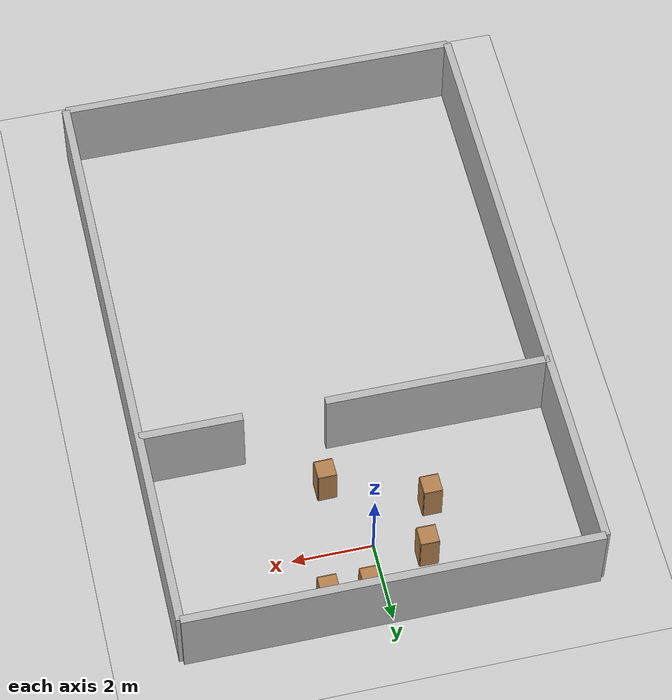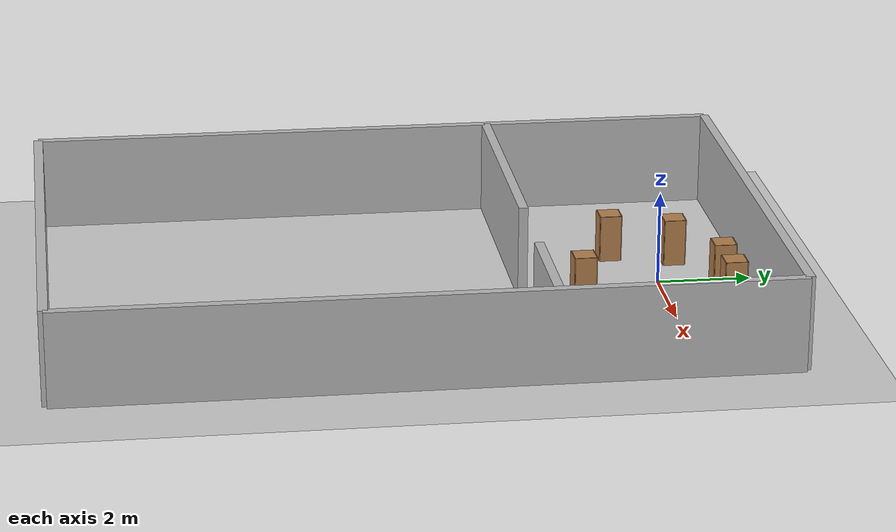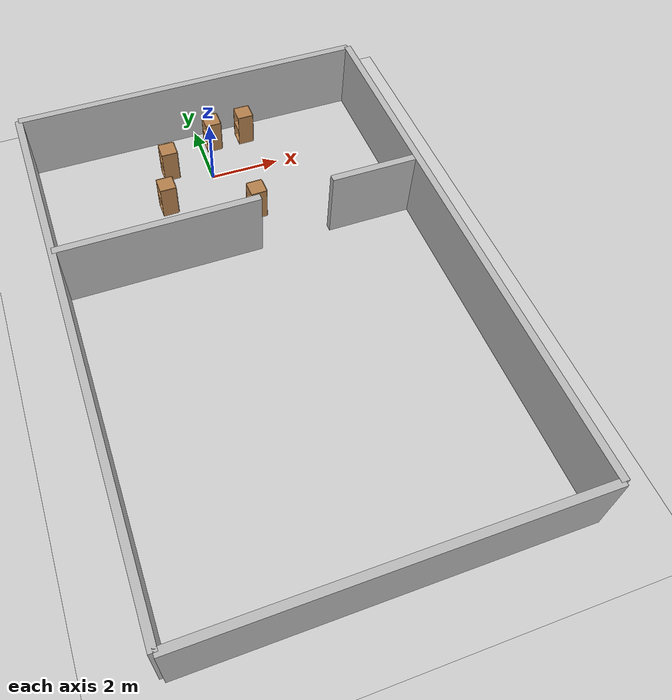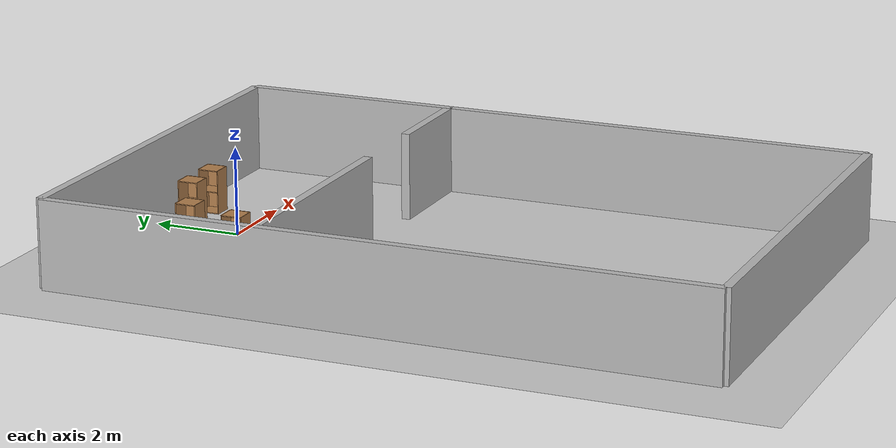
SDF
<sdf version="1.6">
 <world name="default">
  <physics name="default_physics" default="0" type="ode">
   <ode>
    <solver>
     <type>quick</type>
     <iters>20</iters>
     <sor>1</sor>
     <use_dynamic_moi_rescaling>0</use_dynamic_moi_rescaling>
    </solver>
    <constraints>
     <cfm>0</cfm>
     <erp>0.2</erp>
     <contact_max_correcting_vel>100</contact_max_correcting_vel>
     <contact_surface_layer>0</contact_surface_layer>
    </constraints>
   </ode>
   <real_time_update_rate>0</real_time_update_rate>
   <max_step_size>0.001</max_step_size>
   <real_time_factor>100</real_time_factor>
   <max_contacts>20</max_contacts>
  </physics>
  <light name="sun" type="directional">
   <pose>0 0 10 0 -0 0</pose>
   <diffuse>0.8 0.8 0.8 1</diffuse>
   <specular>0.2 0.2 0.2 1</specular>
   <attenuation>
    <range>1000</range>
    <constant>0.9</constant>
    <linear>0.01</linear>
    <quadratic>0.001</quadratic>
   </attenuation>
   <direction>0.5 0.1 -0.9</direction>
  </light>
  <model name="ground_plane">
   <static>1</static>
   <link name="link">
    <collision name="collision">
     <geometry><plane><normal>0 0 1</normal><size>100 100</size></plane></geometry>
     <surface><friction><ode><mu>100</mu><mu2>50</mu2></ode></friction></surface>
    </collision>
    <visual name="visual">
     <cast_shadows>0</cast_shadows>
     <geometry><plane><normal>0 0 1</normal><size>100 100</size></plane></geometry>
     <material>
      <script><uri>file://media/materials/scripts/gazebo.material</uri><name>Gazebo/Grey</name></script>
     </material>
    </visual>
    <velocity_decay><linear>0</linear><angular>0</angular></velocity_decay>
   </link>
  </model>
  <model name="wall_1_model">
   <pose>0 -13 1 0 -0 0</pose>
   <static>1</static>
   <link name="wall_1_body">
    <inertial>
     <mass>1</mass>
     <inertia><ixx>1</ixx><ixy>0</ixy><ixz>0</ixz><iyy>1</iyy><iyz>0</iyz><izz>1</izz></inertia>
    </inertial>
    <collision name="collision"><geometry><box><size>10 0.2 2</size></box></geometry></collision>
    <visual name="visual"><geometry><box><size>10 0.2 2</size></box></geometry></visual>
    <velocity_decay><linear>0</linear><angular>0</angular></velocity_decay>
   </link>
  </model>
  <model name="wall_2_model">
   <pose>0 2 1 0 -0 0</pose>
   <static>1</static>
   <link name="wall_2_body">
    <inertial>
     <mass>1</mass>
     <inertia><ixx>1</ixx><ixy>0</ixy><ixz>0</ixz><iyy>1</iyy><iyz>0</iyz><izz>1</izz></inertia>
    </inertial>
    <collision name="collision"><geometry><box><size>10 0.2 2</size></box></geometry></collision>
    <visual name="visual"><geometry><box><size>10 0.2 2</size></box></geometry></visual>
    <velocity_decay><linear>0</linear><angular>0</angular></velocity_decay>
   </link>
  </model>
  <model name="wall_3_model">
   <pose>-5 -5.5 1 0 -0 0</pose>
   <static>1</static>
   <link name="wall_3_body">
    <inertial>
     <mass>1</mass>
     <inertia><ixx>1</ixx><ixy>0</ixy><ixz>0</ixz><iyy>1</iyy><iyz>0</iyz><izz>1</izz></inertia>
    </inertial>
    <collision name="collision"><geometry><box><size>0.2 15 2</size></box></geometry></collision>
    <visual name="visual"><geometry><box><size>0.2 15 2</size></box></geometry></visual>
    <velocity_decay><linear>0</linear><angular>0</angular></velocity_decay>
   </link>
  </model>
  <model name="wall_4_model">
   <pose>5 -5.5 1 0 -0 0</pose>
   <static>1</static>
   <link name="wall_4_body">
    <inertial>
     <mass>1</mass>
     <inertia><ixx>1</ixx><ixy>0</ixy><ixz>0</ixz><iyy>1</iyy><iyz>0</iyz><izz>1</izz></inertia>
    </inertial>
    <collision name="collision"><geometry><box><size>0.2 15 2</size></box></geometry></collision>
    <visual name="visual"><geometry><box><size>0.2 15 2</size></box></geometry></visual>
    <velocity_decay><linear>0</linear><angular>0</angular></velocity_decay>
   </link>
  </model>
  <model name="wall_5_model">
   <pose>-2.25 -3 1 0 -0 0</pose>
   <static>1</static>
   <link name="wall_5_body">
    <inertial>
     <mass>1</mass>
     <inertia><ixx>1</ixx><ixy>0</ixy><ixz>0</ixz><iyy>1</iyy><iyz>0</iyz><izz>1</izz></inertia>
    </inertial>
    <collision name="collision"><geometry><box><size>5.5 0.2 2</size></box></geometry></collision>
    <visual name="visual"><geometry><box><size>5.5 0.2 2</size></box></geometry></visual>
    <velocity_decay><linear>0</linear><angular>0</angular></velocity_decay>
   </link>
  </model>
  <model name="wall_6_model">
   <pose>3.75 -3 1 0 -0 0</pose>
   <static>1</static>
   <link name="wall_6_body">
    <inertial>
     <mass>1</mass>
     <inertia><ixx>1</ixx><ixy>0</ixy><ixz>0</ixz><iyy>1</iyy><iyz>0</iyz><izz>1</izz></inertia>
    </inertial>
    <collision name="collision"><geometry><box><size>2.5 0.2 2</size></box></geometry></collision>
    <visual name="visual"><geometry><box><size>2.5 0.2 2</size></box></geometry></visual>
    <velocity_decay><linear>0</linear><angular>0</angular></velocity_decay>
   </link>
  </model>
  <scene><ambient>0.2 0.2 0.2 1</ambient><background>0.7 0.7 0.7 1</background><shadows>1</shadows></scene>
  <model name="cabinet_1">
   <static>0</static>
   <link name="cabinet_bottom_plate">
    <inertial>
     <pose>0 0 -1 0 -0 0</pose>
     <inertia><ixx>2.05</ixx><ixy>0</ixy><ixz>0</ixz><iyy>2.05</iyy><iyz>0</iyz><izz>2.05</izz></inertia>
     <mass>25</mass>
    </inertial>
    <collision name="cabinet_bottom_plate_geom">
     <pose>0 0 0.01 0 -0 0</pose>
     <geometry><box><size>0.45 0.45 0.02</size></box></geometry>
    </collision>
    <visual name="cabinet_bottom_plate_geom_visual">
     <pose>0 0 0.01 0 -0 0</pose>
     <geometry><box><size>0.45 0.45 0.02</size></box></geometry>
     <material>
      <script><uri>file://media/materials/scripts/gazebo.material</uri><name>Gazebo/Wood</name></script>
     </material>
    </visual>
    <collision name="cabinet_bottom_plate_geom_cabinet_back_plate">
     <pose>0.235 0 0.51 0 -0 0</pose>
     <geometry><box><size>0.02 0.45 1.02</size></box></geometry>
    </collision>
    <visual name="cabinet_bottom_plate_geom_cabinet_back_plate_visual">
     <pose>0.235 0 0.51 0 -0 0</pose>
     <geometry><box><size>0.02 0.45 1.02</size></box></geometry>
     <material>
      <script><uri>file://media/materials/scripts/gazebo.material</uri><name>Gazebo/Wood</name></script>
     </material>
    </visual>
    <collision name="cabinet_bottom_plate_geom_cabinet_left_plate">
     <pose>0 0.235 0.51 0 -0 0</pose>
     <geometry><box><size>0.45 0.02 1.02</size></box></geometry>
    </collision>
    <visual name="cabinet_bottom_plate_geom_cabinet_left_plate_visual">
     <pose>0 0.235 0.51 0 -0 0</pose>
     <geometry><box><size>0.45 0.02 1.02</size></box></geometry>
     <material>
      <script><uri>file://media/materials/scripts/gazebo.material</uri><name>Gazebo/Wood</name></script>
     </material>
    </visual>
    <collision name="cabinet_bottom_plate_geom_cabinet_middle_plate">
     <pose>0 0 0.51 0 -0 0</pose>
     <geometry><box><size>0.45 0.45 0.02</size></box></geometry>
    </collision>
    <visual name="cabinet_bottom_plate_geom_cabinet_middle_plate_visual">
     <pose>0 0 0.51 0 -0 0</pose>
     <geometry><box><size>0.45 0.45 0.02</size></box></geometry>
     <material>
      <script><uri>file://media/materials/scripts/gazebo.material</uri><name>Gazebo/Wood</name></script>
     </material>
    </visual>
    <collision name="cabinet_bottom_plate_geom_cabinet_right_plate">
     <pose>0 -0.235 0.51 0 -0 0</pose>
     <geometry><box><size>0.45 0.02 1.02</size></box></geometry>
    </collision>
    <visual name="cabinet_bottom_plate_geom_cabinet_right_plate_visual">
     <pose>0 -0.235 0.51 0 -0 0</pose>
     <geometry><box><size>0.45 0.02 1.02</size></box></geometry>
     <material>
      <script><uri>file://media/materials/scripts/gazebo.material</uri><name>Gazebo/Wood</name></script>
     </material>
    </visual>
    <collision name="cabinet_bottom_plate_geom_cabinet_top_plate">
     <pose>0 0 1.01 0 -0 0</pose>
     <geometry><box><size>0.45 0.45 0.02</size></box></geometry>
    </collision>
    <visual name="cabinet_bottom_plate_geom_cabinet_top_plate_visual">
     <pose>0 0 1.01 0 -0 0</pose>
     <geometry><box><size>0.45 0.45 0.02</size></box></geometry>
     <material>
      <script><uri>file://media/materials/scripts/gazebo.material</uri><name>Gazebo/Wood</name></script>
     </material>
    </visual>
    <velocity_decay><linear>0</linear><angular>0</angular></velocity_decay>
   </link>
   <pose>-1.57216 -0.784625 -0 0 -1e-06 0.005323</pose>
  </model>
  <model name="cabinet_2">
   <static>0</static>
   <link name="cabinet_bottom_plate">
    <inertial>
     <pose>0 0 -1 0 -0 0</pose>
     <inertia><ixx>2.05</ixx><ixy>0</ixy><ixz>0</ixz><iyy>2.05</iyy><iyz>0</iyz><izz>2.05</izz></inertia>
     <mass>25</mass>
    </inertial>
    <collision name="cabinet_bottom_plate_geom">
     <pose>0 0 0.01 0 -0 0</pose>
     <geometry><box><size>0.45 0.45 0.02</size></box></geometry>
    </collision>
    <visual name="cabinet_bottom_plate_geom_visual">
     <pose>0 0 0.01 0 -0 0</pose>
     <geometry><box><size>0.45 0.45 0.02</size></box></geometry>
     <material>
      <script><uri>file://media/materials/scripts/gazebo.material</uri><name>Gazebo/Wood</name></script>
     </material>
    </visual>
    <collision name="cabinet_bottom_plate_geom_cabinet_back_plate">
     <pose>0.235 0 0.51 0 -0 0</pose>
     <geometry><box><size>0.02 0.45 1.02</size></box></geometry>
    </collision>
    <visual name="cabinet_bottom_plate_geom_cabinet_back_plate_visual">
     <pose>0.235 0 0.51 0 -0 0</pose>
     <geometry><box><size>0.02 0.45 1.02</size></box></geometry>
     <material>
      <script><uri>file://media/materials/scripts/gazebo.material</uri><name>Gazebo/Wood</name></script>
     </material>
    </visual>
    <collision name="cabinet_bottom_plate_geom_cabinet_left_plate">
     <pose>0 0.235 0.51 0 -0 0</pose>
     <geometry><box><size>0.45 0.02 1.02</size></box></geometry>
    </collision>
    <visual name="cabinet_bottom_plate_geom_cabinet_left_plate_visual">
     <pose>0 0.235 0.51 0 -0 0</pose>
     <geometry><box><size>0.45 0.02 1.02</size></box></geometry>
     <material>
      <script><uri>file://media/materials/scripts/gazebo.material</uri><name>Gazebo/Wood</name></script>
     </material>
    </visual>
    <collision name="cabinet_bottom_plate_geom_cabinet_middle_plate">
     <pose>0 0 0.51 0 -0 0</pose>
     <geometry><box><size>0.45 0.45 0.02</size></box></geometry>
    </collision>
    <visual name="cabinet_bottom_plate_geom_cabinet_middle_plate_visual">
     <pose>0 0 0.51 0 -0 0</pose>
     <geometry><box><size>0.45 0.45 0.02</size></box></geometry>
     <material>
      <script><uri>file://media/materials/scripts/gazebo.material</uri><name>Gazebo/Wood</name></script>
     </material>
    </visual>
    <collision name="cabinet_bottom_plate_geom_cabinet_right_plate">
     <pose>0 -0.235 0.51 0 -0 0</pose>
     <geometry><box><size>0.45 0.02 1.02</size></box></geometry>
    </collision>
    <visual name="cabinet_bottom_plate_geom_cabinet_right_plate_visual">
     <pose>0 -0.235 0.51 0 -0 0</pose>
     <geometry><box><size>0.45 0.02 1.02</size></box></geometry>
     <material>
      <script><uri>file://media/materials/scripts/gazebo.material</uri><name>Gazebo/Wood</name></script>
     </material>
    </visual>
    <collision name="cabinet_bottom_plate_geom_cabinet_top_plate">
     <pose>0 0 1.01 0 -0 0</pose>
     <geometry><box><size>0.45 0.45 0.02</size></box></geometry>
    </collision>
    <visual name="cabinet_bottom_plate_geom_cabinet_top_plate_visual">
     <pose>0 0 1.01 0 -0 0</pose>
     <geometry><box><size>0.45 0.45 0.02</size></box></geometry>
     <material>
      <script><uri>file://media/materials/scripts/gazebo.material</uri><name>Gazebo/Wood</name></script>
     </material>
    </visual>
    <velocity_decay><linear>0</linear><angular>0</angular></velocity_decay>
   </link>
   <pose>1.39514 1.32269 -0 0 -1e-06 -6.3e-05</pose>
  </model>
  <model name="cabinet_3">
   <static>0</static>
   <link name="cabinet_bottom_plate">
    <inertial>
     <pose>0 0 -1 0 -0 0</pose>
     <inertia><ixx>2.05</ixx><ixy>0</ixy><ixz>0</ixz><iyy>2.05</iyy><iyz>0</iyz><izz>2.05</izz></inertia>
     <mass>25</mass>
    </inertial>
    <collision name="cabinet_bottom_plate_geom">
     <pose>0 0 0.01 0 -0 0</pose>
     <geometry><box><size>0.45 0.45 0.02</size></box></geometry>
    </collision>
    <visual name="cabinet_bottom_plate_geom_visual">
     <pose>0 0 0.01 0 -0 0</pose>
     <geometry><box><size>0.45 0.45 0.02</size></box></geometry>
     <material>
      <script><uri>file://media/materials/scripts/gazebo.material</uri><name>Gazebo/Wood</name></script>
     </material>
    </visual>
    <collision name="cabinet_bottom_plate_geom_cabinet_back_plate">
     <pose>0.235 0 0.51 0 -0 0</pose>
     <geometry><box><size>0.02 0.45 1.02</size></box></geometry>
    </collision>
    <visual name="cabinet_bottom_plate_geom_cabinet_back_plate_visual">
     <pose>0.235 0 0.51 0 -0 0</pose>
     <geometry><box><size>0.02 0.45 1.02</size></box></geometry>
     <material>
      <script><uri>file://media/materials/scripts/gazebo.material</uri><name>Gazebo/Wood</name></script>
     </material>
    </visual>
    <collision name="cabinet_bottom_plate_geom_cabinet_left_plate">
     <pose>0 0.235 0.51 0 -0 0</pose>
     <geometry><box><size>0.45 0.02 1.02</size></box></geometry>
    </collision>
    <visual name="cabinet_bottom_plate_geom_cabinet_left_plate_visual">
     <pose>0 0.235 0.51 0 -0 0</pose>
     <geometry><box><size>0.45 0.02 1.02</size></box></geometry>
     <material>
      <script><uri>file://media/materials/scripts/gazebo.material</uri><name>Gazebo/Wood</name></script>
     </material>
    </visual>
    <collision name="cabinet_bottom_plate_geom_cabinet_middle_plate">
     <pose>0 0 0.51 0 -0 0</pose>
     <geometry><box><size>0.45 0.45 0.02</size></box></geometry>
    </collision>
    <visual name="cabinet_bottom_plate_geom_cabinet_middle_plate_visual">
     <pose>0 0 0.51 0 -0 0</pose>
     <geometry><box><size>0.45 0.45 0.02</size></box></geometry>
     <material>
      <script><uri>file://media/materials/scripts/gazebo.material</uri><name>Gazebo/Wood</name></script>
     </material>
    </visual>
    <collision name="cabinet_bottom_plate_geom_cabinet_right_plate">
     <pose>0 -0.235 0.51 0 -0 0</pose>
     <geometry><box><size>0.45 0.02 1.02</size></box></geometry>
    </collision>
    <visual name="cabinet_bottom_plate_geom_cabinet_right_plate_visual">
     <pose>0 -0.235 0.51 0 -0 0</pose>
     <geometry><box><size>0.45 0.02 1.02</size></box></geometry>
     <material>
      <script><uri>file://media/materials/scripts/gazebo.material</uri><name>Gazebo/Wood</name></script>
     </material>
    </visual>
    <collision name="cabinet_bottom_plate_geom_cabinet_top_plate">
     <pose>0 0 1.01 0 -0 0</pose>
     <geometry><box><size>0.45 0.45 0.02</size></box></geometry>
    </collision>
    <visual name="cabinet_bottom_plate_geom_cabinet_top_plate_visual">
     <pose>0 0 1.01 0 -0 0</pose>
     <geometry><box><size>0.45 0.45 0.02</size></box></geometry>
     <material>
      <script><uri>file://media/materials/scripts/gazebo.material</uri><name>Gazebo/Wood</name></script>
     </material>
    </visual>
    <velocity_decay><linear>0</linear><angular>0</angular></velocity_decay>
   </link>
   <pose>-1.16634 0.545991 -0 0 -1e-06 -0.007937</pose>
  </model>
  <model name="cabinet_4">
   <static>0</static>
   <link name="cabinet_bottom_plate">
    <inertial>
     <pose>0 0 -1 0 -0 0</pose>
     <inertia><ixx>2.05</ixx><ixy>0</ixy><ixz>0</ixz><iyy>2.05</iyy><iyz>0</iyz><izz>2.05</izz></inertia>
     <mass>25</mass>
    </inertial>
    <collision name="cabinet_bottom_plate_geom">
     <pose>0 0 0.01 0 -0 0</pose>
     <geometry><box><size>0.45 0.45 0.02</size></box></geometry>
    </collision>
    <visual name="cabinet_bottom_plate_geom_visual">
     <pose>0 0 0.01 0 -0 0</pose>
     <geometry><box><size>0.45 0.45 0.02</size></box></geometry>
     <material>
      <script><uri>file://media/materials/scripts/gazebo.material</uri><name>Gazebo/Wood</name></script>
     </material>
    </visual>
    <collision name="cabinet_bottom_plate_geom_cabinet_back_plate">
     <pose>0.235 0 0.51 0 -0 0</pose>
     <geometry><box><size>0.02 0.45 1.02</size></box></geometry>
    </collision>
    <visual name="cabinet_bottom_plate_geom_cabinet_back_plate_visual">
     <pose>0.235 0 0.51 0 -0 0</pose>
     <geometry><box><size>0.02 0.45 1.02</size></box></geometry>
     <material>
      <script><uri>file://media/materials/scripts/gazebo.material</uri><name>Gazebo/Wood</name></script>
     </material>
    </visual>
    <collision name="cabinet_bottom_plate_geom_cabinet_left_plate">
     <pose>0 0.235 0.51 0 -0 0</pose>
     <geometry><box><size>0.45 0.02 1.02</size></box></geometry>
    </collision>
    <visual name="cabinet_bottom_plate_geom_cabinet_left_plate_visual">
     <pose>0 0.235 0.51 0 -0 0</pose>
     <geometry><box><size>0.45 0.02 1.02</size></box></geometry>
     <material>
      <script><uri>file://media/materials/scripts/gazebo.material</uri><name>Gazebo/Wood</name></script>
     </material>
    </visual>
    <collision name="cabinet_bottom_plate_geom_cabinet_middle_plate">
     <pose>0 0 0.51 0 -0 0</pose>
     <geometry><box><size>0.45 0.45 0.02</size></box></geometry>
    </collision>
    <visual name="cabinet_bottom_plate_geom_cabinet_middle_plate_visual">
     <pose>0 0 0.51 0 -0 0</pose>
     <geometry><box><size>0.45 0.45 0.02</size></box></geometry>
     <material>
      <script><uri>file://media/materials/scripts/gazebo.material</uri><name>Gazebo/Wood</name></script>
     </material>
    </visual>
    <collision name="cabinet_bottom_plate_geom_cabinet_right_plate">
     <pose>0 -0.235 0.51 0 -0 0</pose>
     <geometry><box><size>0.45 0.02 1.02</size></box></geometry>
    </collision>
    <visual name="cabinet_bottom_plate_geom_cabinet_right_plate_visual">
     <pose>0 -0.235 0.51 0 -0 0</pose>
     <geometry><box><size>0.45 0.02 1.02</size></box></geometry>
     <material>
      <script><uri>file://media/materials/scripts/gazebo.material</uri><name>Gazebo/Wood</name></script>
     </material>
    </visual>
    <collision name="cabinet_bottom_plate_geom_cabinet_top_plate">
     <pose>0 0 1.01 0 -0 0</pose>
     <geometry><box><size>0.45 0.45 0.02</size></box></geometry>
    </collision>
    <visual name="cabinet_bottom_plate_geom_cabinet_top_plate_visual">
     <pose>0 0 1.01 0 -0 0</pose>
     <geometry><box><size>0.45 0.45 0.02</size></box></geometry>
     <material>
      <script><uri>file://media/materials/scripts/gazebo.material</uri><name>Gazebo/Wood</name></script>
     </material>
    </visual>
    <velocity_decay><linear>0</linear><angular>0</angular></velocity_decay>
   </link>
   <pose>0.386737 1.31097 -0 1e-06 -0 -0.001878</pose>
  </model>
  <gravity>0 0 -9.81</gravity>
  <magnetic_field>6e-06 2.3e-05 -4.2e-05</magnetic_field>
  <atmosphere type="adiabatic"/>
  <audio><device>default</device></audio>
  <spherical_coordinates>
   <surface_model>EARTH_WGS84</surface_model>
   <latitude_deg>0</latitude_deg>
   <longitude_deg>0</longitude_deg>
   <elevation>0</elevation>
   <heading_deg>0</heading_deg>
  </spherical_coordinates>
  <model name="cabinet_3_clone">
   <static>0</static>
   <link name="cabinet_bottom_plate">
    <inertial>
     <pose>0 0 -1 0 -0 0</pose>
     <inertia><ixx>2.05</ixx><ixy>0</ixy><ixz>0</ixz><iyy>2.05</iyy><iyz>0</iyz><izz>2.05</izz></inertia>
     <mass>25</mass>
    </inertial>
    <collision name="cabinet_bottom_plate_geom">
     <pose>0 0 0.01 0 -0 0</pose>
     <geometry><box><size>0.45 0.45 0.02</size></box></geometry>
    </collision>
    <visual name="cabinet_bottom_plate_geom_visual">
     <pose>0 0 0.01 0 -0 0</pose>
     <geometry><box><size>0.45 0.45 0.02</size></box></geometry>
     <material>
      <script><uri>file://media/materials/scripts/gazebo.material</uri><name>Gazebo/Wood</name></script>
     </material>
    </visual>
    <collision name="cabinet_bottom_plate_geom_cabinet_back_plate">
     <pose>0.235 0 0.51 0 -0 0</pose>
     <geometry><box><size>0.02 0.45 1.02</size></box></geometry>
    </collision>
    <visual name="cabinet_bottom_plate_geom_cabinet_back_plate_visual">
     <pose>0.235 0 0.51 0 -0 0</pose>
     <geometry><box><size>0.02 0.45 1.02</size></box></geometry>
     <material>
      <script><uri>file://media/materials/scripts/gazebo.material</uri><name>Gazebo/Wood</name></script>
     </material>
    </visual>
    <collision name="cabinet_bottom_plate_geom_cabinet_left_plate">
     <pose>0 0.235 0.51 0 -0 0</pose>
     <geometry><box><size>0.45 0.02 1.02</size></box></geometry>
    </collision>
    <visual name="cabinet_bottom_plate_geom_cabinet_left_plate_visual">
     <pose>0 0.235 0.51 0 -0 0</pose>
     <geometry><box><size>0.45 0.02 1.02</size></box></geometry>
     <material>
      <script><uri>file://media/materials/scripts/gazebo.material</uri><name>Gazebo/Wood</name></script>
     </material>
    </visual>
    <collision name="cabinet_bottom_plate_geom_cabinet_middle_plate">
     <pose>0 0 0.51 0 -0 0</pose>
     <geometry><box><size>0.45 0.45 0.02</size></box></geometry>
    </collision>
    <visual name="cabinet_bottom_plate_geom_cabinet_middle_plate_visual">
     <pose>0 0 0.51 0 -0 0</pose>
     <geometry><box><size>0.45 0.45 0.02</size></box></geometry>
     <material>
      <script><uri>file://media/materials/scripts/gazebo.material</uri><name>Gazebo/Wood</name></script>
     </material>
    </visual>
    <collision name="cabinet_bottom_plate_geom_cabinet_right_plate">
     <pose>0 -0.235 0.51 0 -0 0</pose>
     <geometry><box><size>0.45 0.02 1.02</size></box></geometry>
    </collision>
    <visual name="cabinet_bottom_plate_geom_cabinet_right_plate_visual">
     <pose>0 -0.235 0.51 0 -0 0</pose>
     <geometry><box><size>0.45 0.02 1.02</size></box></geometry>
     <material>
      <script><uri>file://media/materials/scripts/gazebo.material</uri><name>Gazebo/Wood</name></script>
     </material>
    </visual>
    <collision name="cabinet_bottom_plate_geom_cabinet_top_plate">
     <pose>0 0 1.01 0 -0 0</pose>
     <geometry><box><size>0.45 0.45 0.02</size></box></geometry>
    </collision>
    <visual name="cabinet_bottom_plate_geom_cabinet_top_plate_visual">
     <pose>0 0 1.01 0 -0 0</pose>
     <geometry><box><size>0.45 0.45 0.02</size></box></geometry>
     <material>
      <script><uri>file://media/materials/scripts/gazebo.material</uri><name>Gazebo/Wood</name></script>
     </material>
    </visual>
    <velocity_decay><linear>0</linear><angular>0</angular></velocity_decay>
   </link>
   <pose>0.781642 -1.7476 -0 0 -1e-06 0.019426</pose>
  </model>
 </world>
</sdf>
